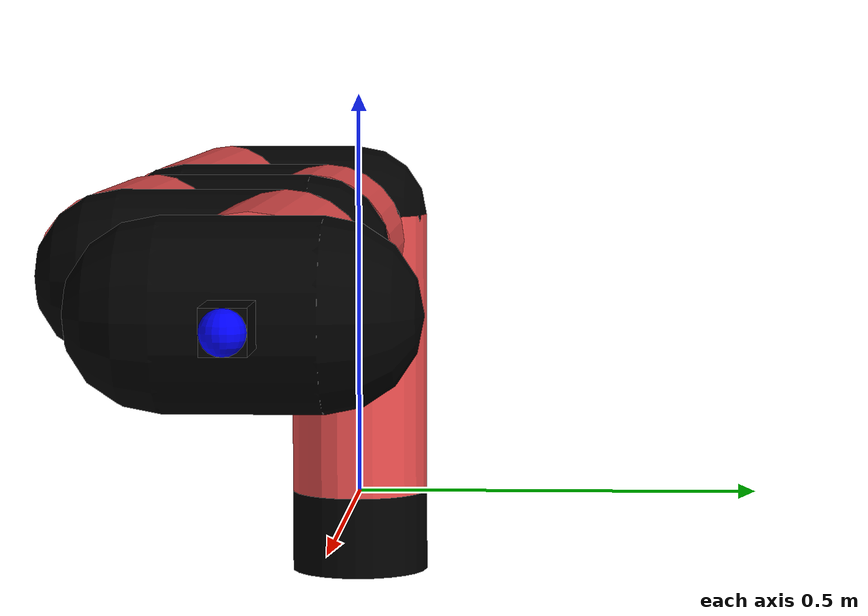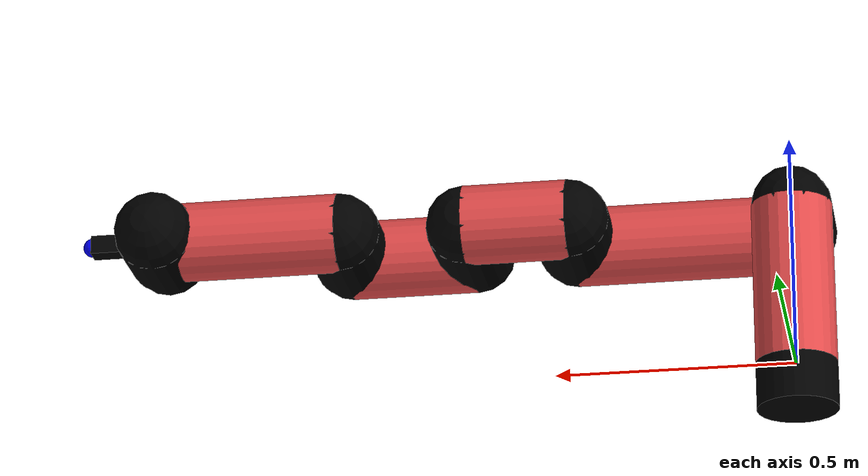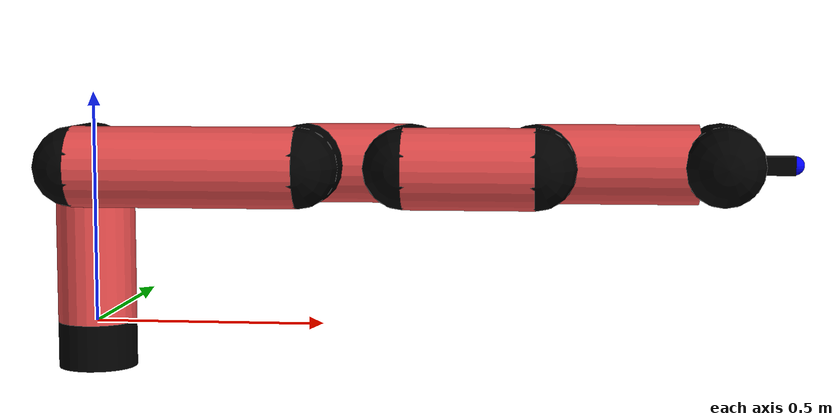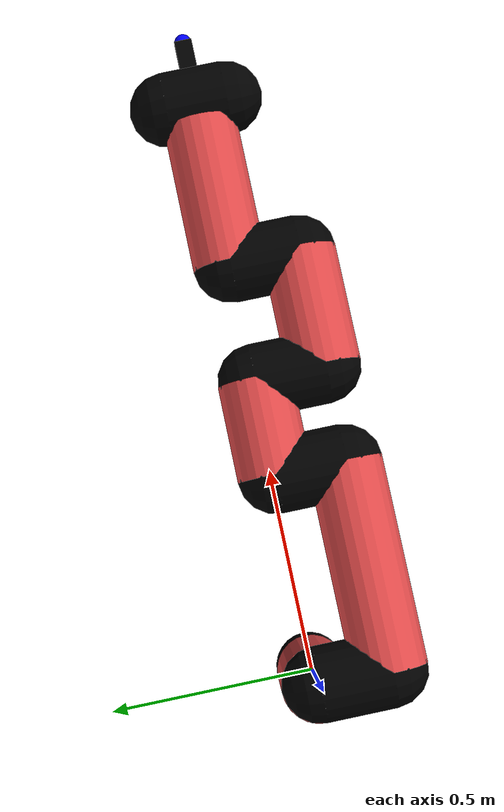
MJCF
<mujoco model="manipulator">
		<compiler angle="degree" coordinate="local" inertiafromgeom="auto" meshdir="meshes/"/>
		<option gravity="0 0 0" integrator="RK4" iterations="30" timestep="0.01"/>

		<default>
		<joint armature="1" limited="true" stiffness="10" damping="15" frictionloss="5.0"/>
		<geom conaffinity="1" condim="3" contype="1" friction=".5 .1 .1" margin="0.002"/>
		<motor ctrllimited="true"/>
		<position ctrllimited="true"/>
		</default>

		<asset>
		<texture builtin="gradient" height="100" rgb1="1.0 1.0 1.0" rgb2="1.0 1.0 1.0" type="skybox" width="100"/>
		<texture builtin="flat" height="32" name="arm_tex" rgb1="0.9 0.3 0.3" type="2d" width="32"/>
		<texture builtin="flat" height="32" name="gripper_tex" rgb1="0.0 0.0 0.0" type="cube" width="32"/>

		<material name="arm_mat" shininess="0.1" specular="0.1" texture="arm_tex"/>
		<material name="gripper_mat" shininess="1" specular="1" texture="gripper_tex"/>
		</asset>

		<worldbody>
		<light cutoff="45" diffuse=".8 .8 .8" dir="0 0.16 -1" directional="false" name="light" pos="0 -2.0 8.0" specular="0.3 0.3 0.3"/>

		<body name="base_link" pos="0 0 -0.1">
		<geom fromto="0 0 0 0 0 0.1" material="arm_mat" name="base_link" rgba="0.0 0.0 0.0 1" size="0.085" type="cylinder"/>
		</body>

		<body name="l1" pos="0 0 0">
<geom fromto="0 0 0 0 0 0.35" material="arm_mat" name="l1" rgba="0.9 0.3 0.3 1" size="0.085" type="cylinder"/>
<geom fromto="0 0 0.35 0 -0.16 0.35" material="arm_mat" name="l1_ex" rgba="0.0 0.0 0.0 1" size="0.085" type="capsule"/>
<joint axis="0 0 1" name="j1" pos="0 0 0" range="-90 90" damping="30.3" frictionloss="8.34"/>

<body name="l2" pos="0 -0.16 0.35">
<geom fromto="0 0 0 0.47 0 0" material="arm_mat" name="l2" rgba="0.9 0.3 0.3 1" size="0.085" type="cylinder"/>
<geom fromto="0.47 0 0 0.47 0.16 0" material="arm_mat" name="l2_ex" rgba="0.0 0.0 0.0 1" size="0.085" type="capsule"/>
<joint axis="0.0 1.0 0.0" name="j2" pos="0 0 0" range="-90 60" damping="31.37" frictionloss="8.93"/>

<body name="l3" pos="0.47 0.16 0">
<geom fromto="0 0 0 0.22 0 0" material="arm_mat" name="l3" rgba="0.9 0.3 0.3 1" size="0.085" type="cylinder"/>
<geom fromto="0.22 0 0 0.22 -0.16 0" material="arm_mat" name="l3_ex" rgba="0.0 0.0 0.0 1" size="0.085" type="capsule"/>
<joint axis="0.0 1.0 0.0" name="j3" pos="0 0 0" range="-30 60" damping="26.37" frictionloss="12.81"/>

<body name="l4" pos="0.22 -0.16 0">
<geom fromto="0 0 0 0.27 0 0" material="arm_mat" name="l4" rgba="0.9 0.3 0.3 1" size="0.085" type="cylinder"/>
<geom fromto="0.27 0 0 0.27 0.16 0" material="arm_mat" name="l4_ex" rgba="0.0 0.0 0.0 1" size="0.085" type="capsule"/>
<joint axis="0.0 1.0 0.0" name="j4" pos="0 0 0" range="-30 60" damping="36.45" frictionloss="8.86"/>

<body name="l5" pos="0.27 0.16 0">
<geom fromto="0 0 0 0.34 0 0" material="arm_mat" name="l5" rgba="0.9 0.3 0.3 1" size="0.085" type="cylinder"/>
<joint axis="0.0 1.0 0.0" name="j5" pos="0 0 0" range="-30 60" damping="28.49" frictionloss="8.51"/>

<body name="gripper" pos="0.34 0 0">
<geom fromto="0.05 -0.07 0 0.05 0.07 0" material="gripper_mat" name="gripper" rgba="0.0 0.0 0.0 1" size="0.085" type="capsule"/><joint axis="1 0 0" name="j6" pos="0 0 0" range="-90 90" damping="15" frictionloss="5.0"/><body name="finger" pos="0.1 0 0">
<geom fromto="0 0.0 0 0.1 0.0 0" material="gripper_mat" name="finger" rgba="0.0 0.0 0.0 1" size="0.020 0.06 0.06" type="box"/>
</body>
<site name="current" pos="0.2 0. 0.0" rgba="0. 0. 1.0 1" size="0.02" type="sphere"/>
</body>
</body>
</body>
</body>
</body>
</body>
</worldbody>
<actuator>
<motor ctrllimited="true" ctrlrange="-1.0 1.0" joint="j1" gear="87.13"/>
<motor ctrllimited="true" ctrlrange="-1.0 1.0" joint="j2" gear="86.29"/>
<motor ctrllimited="true" ctrlrange="-1.0 1.0" joint="j3" gear="98.03"/>
<motor ctrllimited="true" ctrlrange="-1.0 1.0" joint="j4" gear="101.09"/>
<motor ctrllimited="true" ctrlrange="-1.0 1.0" joint="j5" gear="56.41"/>
<motor ctrllimited="true" ctrlrange="-1.0 1.0" joint="j6" gear="80"/>
</actuator>
</mujoco>
